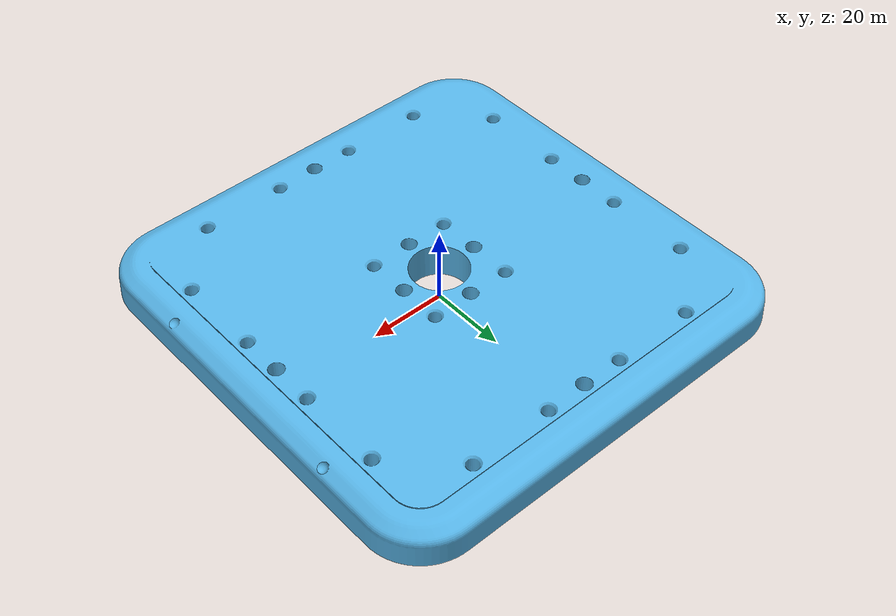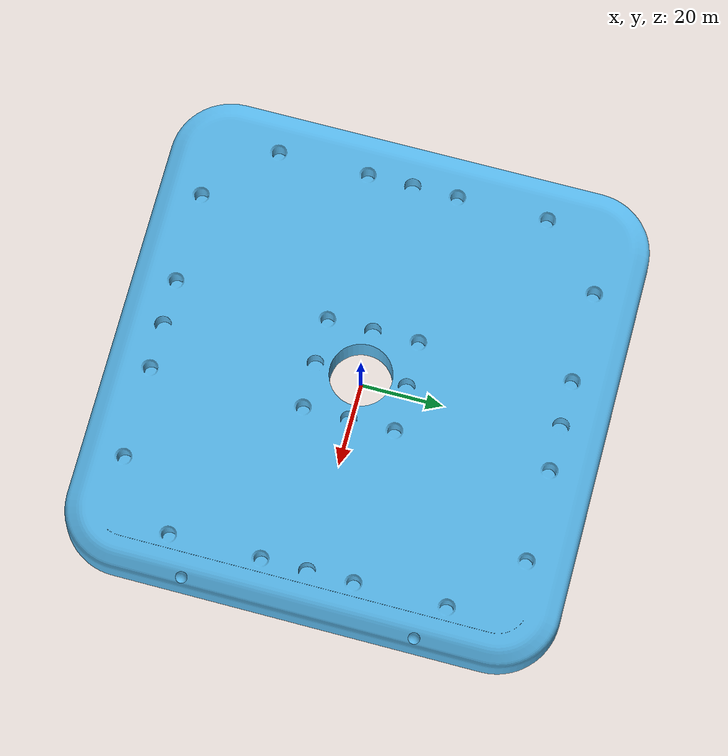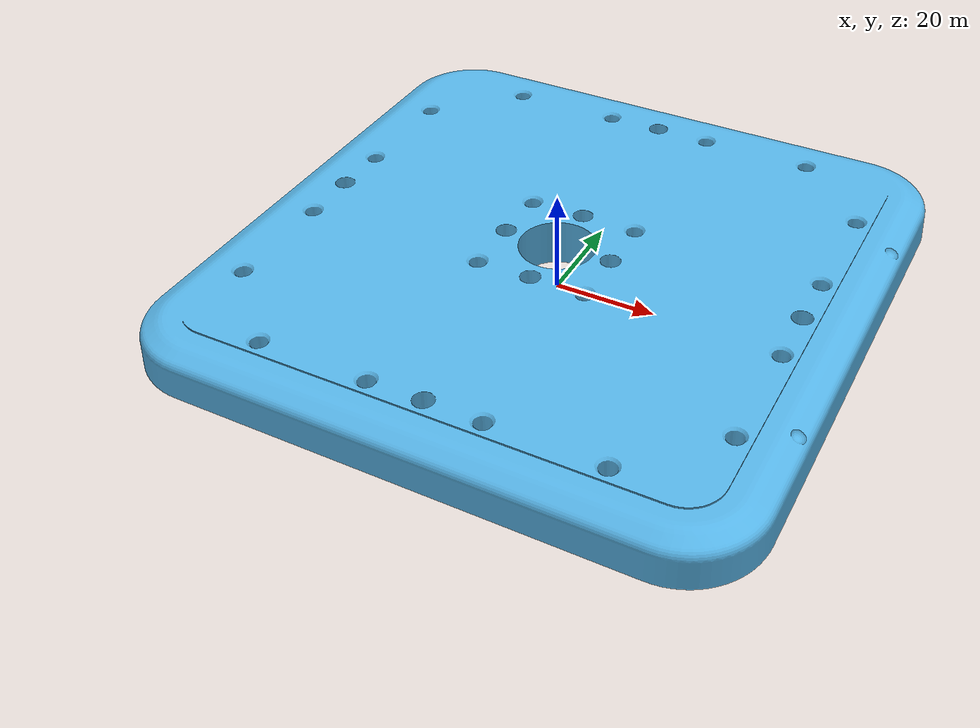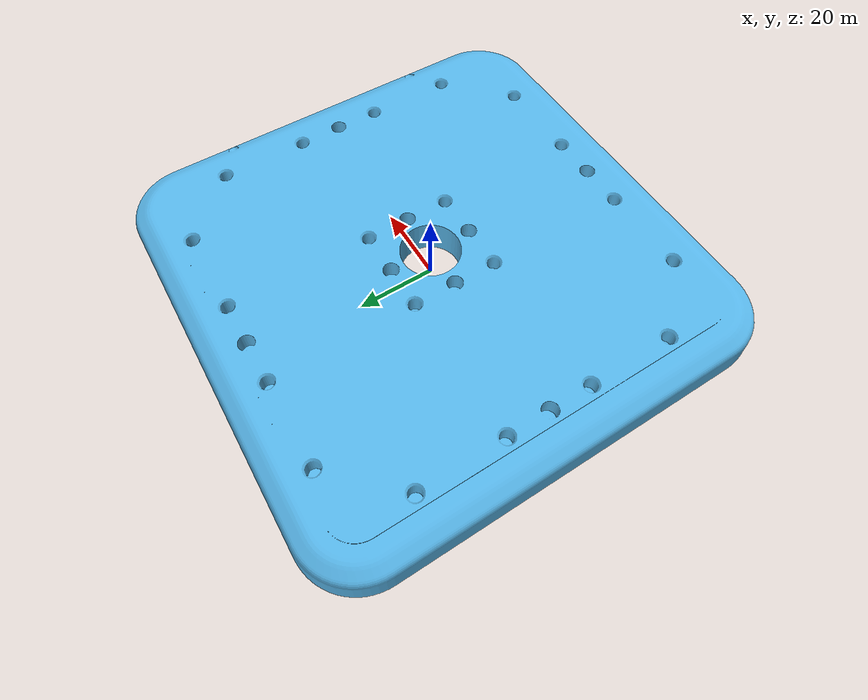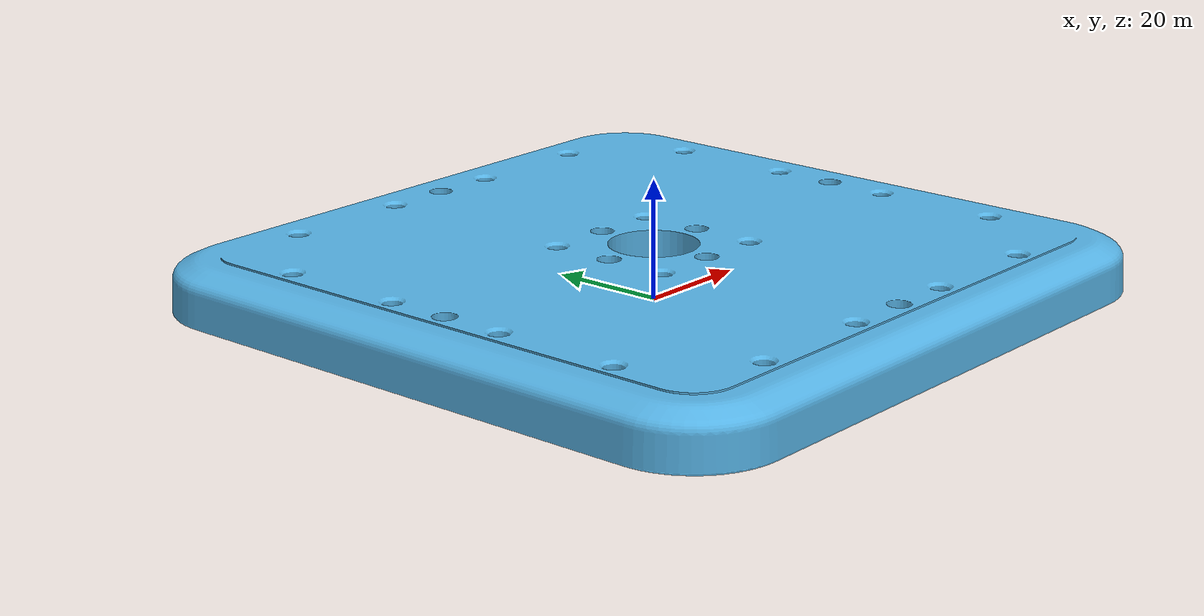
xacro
<?xml version="1.0"?>
<robot xmlns:xacro="http://www.ros.org/wiki/xacro" name="my_planar_robot">

  <link name="world"/>
  <link name="base_link">
    <visual>
      <geometry>
        <mesh filename="package://promoc_simulation/meshes/M3-06-XBOT.stl"/>
      </geometry>
    </visual>
    <collision>
      <geometry>
        <mesh filename="package://promoc_simulation/meshes/M3-06-XBOT.stl"/>
      </geometry>
    </collision>
  </link>
  <joint name="world_to_base" type="fixed">
    <parent link="world"/>
    <child link="base_link"/>
  </joint>

  <link name="x_axis_link">
    ...
  </link>
  <joint name="base_to_x_axis" type="prismatic">
    <parent link="base_link"/>
    <child link="x_axis_link"/>
    <axis xyz="1 0 0"/>
    <limit lower="-1.0" upper="1.0" effort="100" velocity="1.0"/>
  </joint>

  </robot>
